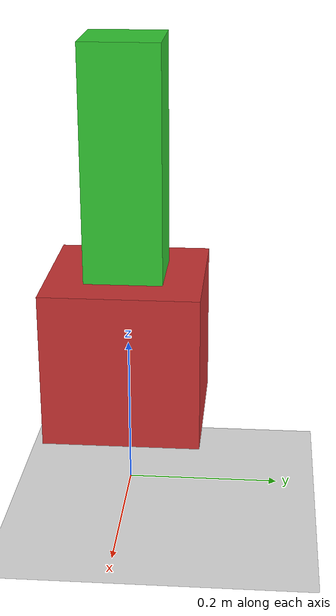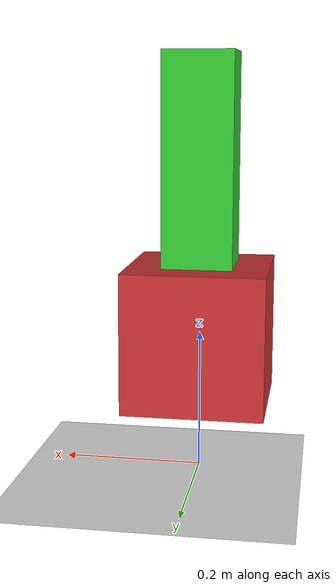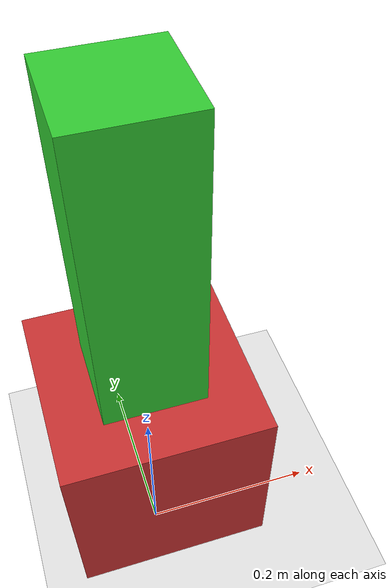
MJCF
<?xml version="1.0" ?>
<mujoco model="test">
  <compiler angle="radian" eulerseq="zyx"/>

  <default>
    <joint damping="1" armature="0.1"/>
    <geom type="box" size="0.1 0.1 0.1" rgba="0.8 0.8 0.8 1"/>
  </default>

  <worldbody>
    <light diffuse=".5 .5 .5" pos="0 0 3" dir="0 0 -1"/>
    <geom type="plane" size="1 1 0.1" rgba=".9 .9 .9 1"/>

    <body name="base" pos="0 0 0.2">
      <joint name="free" type="free"/>
      <geom type="box" size="0.1 0.1 0.1" rgba="0.8 0.2 0.2 1"/>

      <body name="arm" pos="0 0 0.2">
        <joint name="joint1" type="hinge" axis="0 0 1"/>
        <geom type="box" size="0.05 0.05 0.2" rgba="0.2 0.8 0.2 1"/>
      </body>
    </body>
  </worldbody>

  <actuator>
    <position name="joint1_ctrl" joint="joint1" forcelimited="true" ctrlrange="-3.14 3.14"/>
  </actuator>

  <sensor>
    <framepos name="base_pos" objtype="body" objname="base"/>
    <framequat name="base_quat" objtype="body" objname="base"/>
    <framelinvel name="base_vel" objtype="body" objname="base"/>
    <frameangvel name="base_ang_vel" objtype="body" objname="base"/>
  </sensor>
</mujoco>
